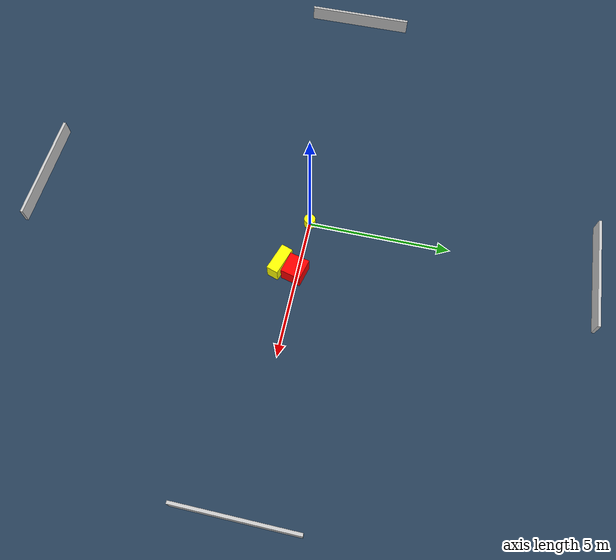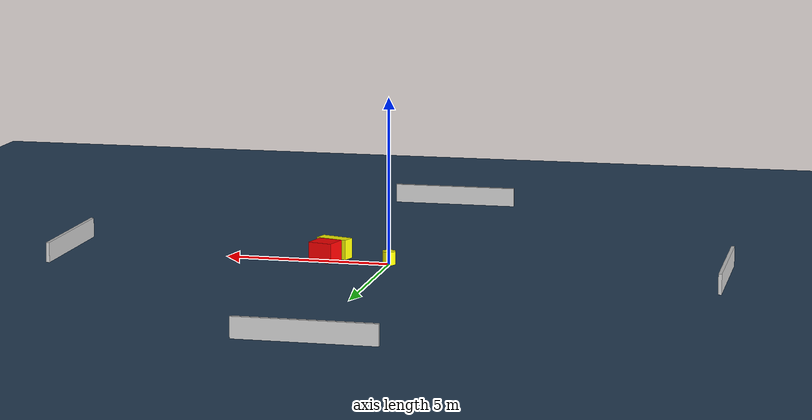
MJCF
<?xml version="1.0" ?>
<mujoco model="generated_environment">
  <option timestep="0.01" integrator="RK4" cone="elliptic"/>
  <default>
    <geom density="1"/>
  </default>
  <asset>
    <texture builtin="gradient" height="3072" name="skybox" rgb1="0.3 0.5 0.7" rgb2="0 0 0" type="skybox" width="512"/>
    <texture builtin="checker" height="300" name="groundplane" rgb1="0.2 0.3 0.4" rgb2="0.1 0.2 0.3" type="2d" width="300"/>
    <material name="groundplane" reflectance="0.2" texrepeat="5 5" texture="groundplane"/>
  </asset>
  <worldbody>
    <light dir="0 0 -1" directional="true" pos="0 0 1.5"/>
    <geom condim="3" friction="0.5 0.005 0.001" material="groundplane" name="floor" pos="0 0 0" size="0 0 0.05" type="plane"/>
    <body name="walls">
      <geom name="wall_1" condim="4" pos="-10.0 0.0 0.3" rgba="0.800000011920929 0.800000011920929 0.800000011920929 1.0" size="0.05 2.0 0.3" type="box"/>
      <geom name="wall_2" condim="4" pos="10.0 0.0 0.3" rgba="0.800000011920929 0.800000011920929 0.800000011920929 1.0" size="0.05 2.0 0.3" type="box"/>
      <geom name="wall_3" condim="4" pos="0.0 -10.0 0.3" rgba="0.800000011920929 0.800000011920929 0.800000011920929 1.0" size="2.0 0.05 0.3" type="box"/>
      <geom name="wall_4" condim="4" pos="0.0 10.0 0.3" rgba="0.800000011920929 0.800000011920929 0.800000011920929 1.0" size="2.0 0.05 0.3" type="box"/>
    </body>
    <body name="robot">
      <joint name="joint_x" type="slide" pos="0 0 0" axis="1 0 0"/>
      <joint name="joint_y" type="slide" pos="0 0 0" axis="0 1 0"/>
      <geom name="robot" type="cylinder" pos="0.0 0.0 0.2" size="0.2 0.2 0.0" mass="5.0" friction="1.0 0.005 0.0001" condim="4" rgba="1.0 1.0 0.0 1.0"/>
    </body>
    <body name="obstacle_1_movable">
      <geom name="obstacle_1_movable" condim="4" pos="1.8314191281498728 -0.6493569101386044 0.3" euler="0 0 251.7434038524396" friction="0.0 0.005 0.001" rgba="1.0 1.0 0.0 1.0" size="0.20496369233054898 0.5002296631333849 0.3" type="box" mass="0.1"/>
      <joint type="free"/>
    </body>
    <body name="obstacle_2_static">
      <geom name="obstacle_2_static" condim="4" pos="1.9838104001467953 -0.07908893067266536 0.3" euler="0 0 165.79879142262863" friction="0.0 0.005 0.001" rgba="1.0 0.0 0.0 1.0" size="0.37230156348461535 0.35189189541684024 0.3" type="box"/>
    </body>
  </worldbody>
  <actuator>
    <motor name="actuator_x" joint="joint_x" gear="1" ctrlrange="-1 1"/>
    <motor name="actuator_y" joint="joint_y" gear="1" ctrlrange="-1 1"/>
  </actuator>
</mujoco>
